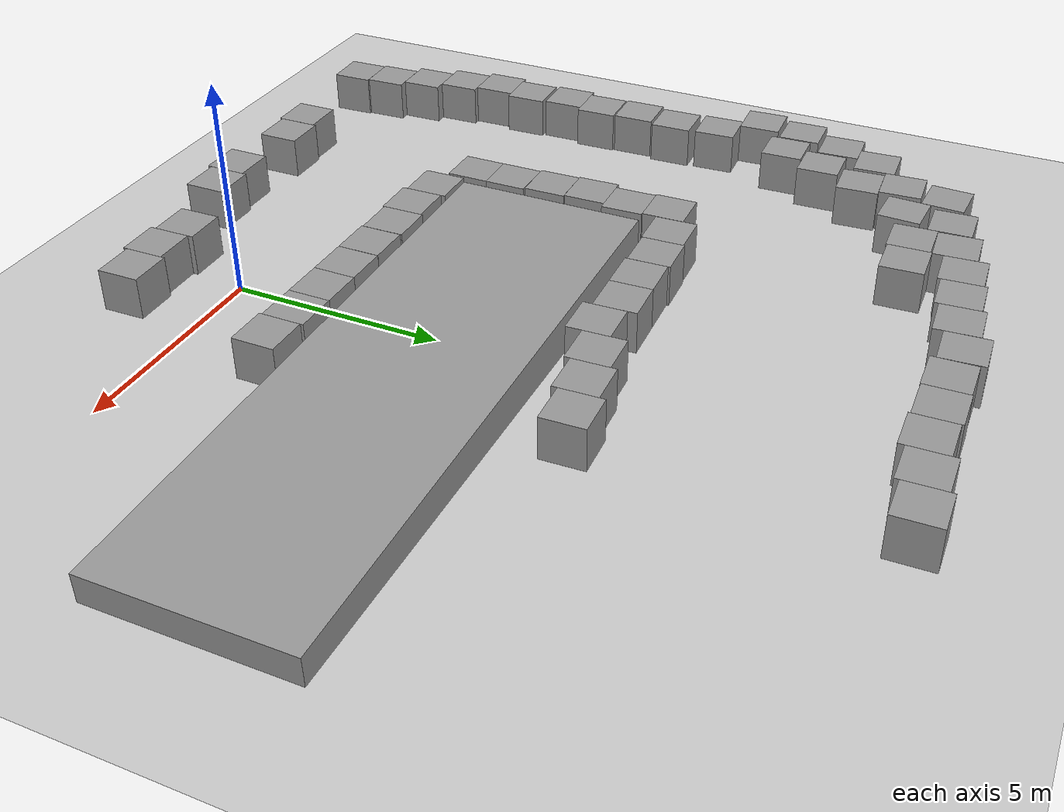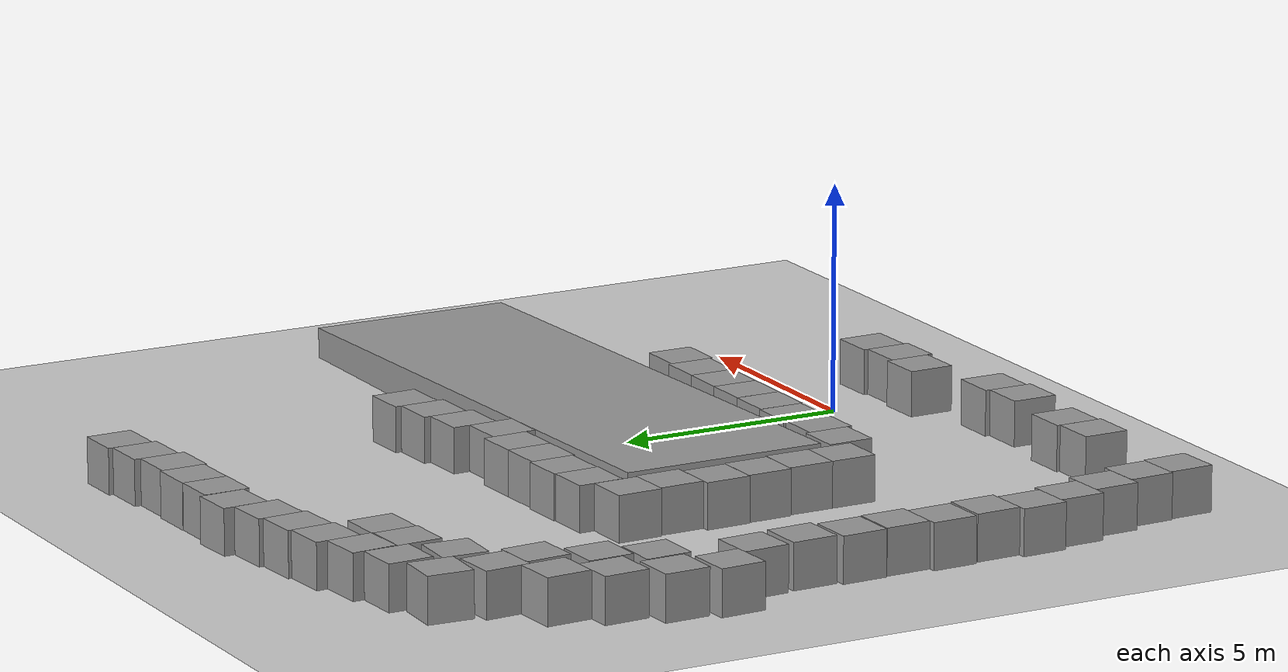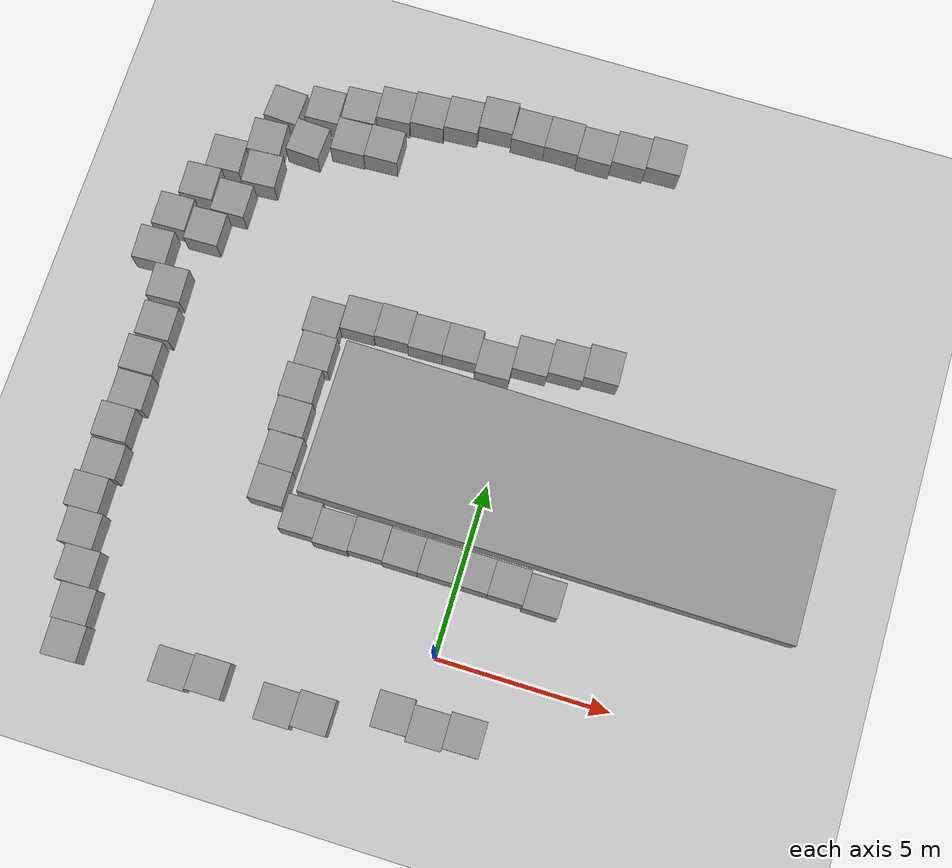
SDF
<sdf version="1.7">
 <world name="default">
  <model name="ground_plane">
   <static>1</static>
   <link name="link">
    <collision name="collision">
     <geometry><plane><normal>0 0 1</normal><size>100 100</size></plane></geometry>
     <surface>
      <contact><collide_bitmask>65535</collide_bitmask></contact>
      <friction><ode><mu>100</mu><mu2>50</mu2></ode></friction>
     </surface>
    </collision>
    <visual name="visual">
     <cast_shadows>0</cast_shadows>
     <geometry><plane><normal>0 0 1</normal><size>100 100</size></plane></geometry>
     <material>
      <script><uri>file://media/materials/scripts/gazebo.material</uri><name>Gazebo/Grey</name></script>
     </material>
    </visual>
   </link>
  </model>
  <model name="unit_box">
   <pose>-1.6306 2.48148 0.5 0 -0 0.003919</pose>
   <link name="link">
    <inertial>
     <mass>1</mass>
     <inertia>
      <ixx>0.166667</ixx>
      <ixy>0</ixy>
      <ixz>0</ixz>
      <iyy>0.166667</iyy>
      <iyz>0</iyz>
      <izz>0.166667</izz>
     </inertia>
    </inertial>
    <collision name="collision"><geometry><box><size>1 1 1</size></box></geometry></collision>
    <visual name="visual">
     <geometry><box><size>1 1 1</size></box></geometry>
     <material>
      <script><name>Gazebo/Grey</name><uri>file://media/materials/scripts/gazebo.material</uri></script>
     </material>
    </visual>
   </link>
  </model>
  <model name="unit_box_0">
   <pose>-0.627463 2.48304 0.5 0 0 -0.002213</pose>
   <link name="link">
    <inertial>
     <mass>1</mass>
     <inertia>
      <ixx>0.166667</ixx>
      <ixy>0</ixy>
      <ixz>0</ixz>
      <iyy>0.166667</iyy>
      <iyz>0</iyz>
      <izz>0.166667</izz>
     </inertia>
    </inertial>
    <collision name="collision"><geometry><box><size>1 1 1</size></box></geometry></collision>
    <visual name="visual">
     <geometry><box><size>1 1 1</size></box></geometry>
     <material>
      <script><name>Gazebo/Grey</name><uri>file://media/materials/scripts/gazebo.material</uri></script>
     </material>
    </visual>
   </link>
  </model>
  <model name="unit_box_1">
   <pose>0.372536 2.48136 0.5 0 0 -0.002213</pose>
   <link name="link">
    <inertial>
     <mass>1</mass>
     <inertia>
      <ixx>0.166667</ixx>
      <ixy>0</ixy>
      <ixz>0</ixz>
      <iyy>0.166667</iyy>
      <iyz>0</iyz>
      <izz>0.166667</izz>
     </inertia>
    </inertial>
    <collision name="collision"><geometry><box><size>1 1 1</size></box></geometry></collision>
    <visual name="visual">
     <geometry><box><size>1 1 1</size></box></geometry>
     <material>
      <script><name>Gazebo/Grey</name><uri>file://media/materials/scripts/gazebo.material</uri></script>
     </material>
    </visual>
   </link>
  </model>
  <model name="unit_box_2">
   <pose>1.37261 2.47906 0.5 0 0 -0.002082</pose>
   <link name="link">
    <inertial>
     <mass>1</mass>
     <inertia>
      <ixx>0.166667</ixx>
      <ixy>0</ixy>
      <ixz>0</ixz>
      <iyy>0.166667</iyy>
      <iyz>0</iyz>
      <izz>0.166667</izz>
     </inertia>
    </inertial>
    <collision name="collision"><geometry><box><size>1 1 1</size></box></geometry></collision>
    <visual name="visual">
     <geometry><box><size>1 1 1</size></box></geometry>
     <material>
      <script><name>Gazebo/Grey</name><uri>file://media/materials/scripts/gazebo.material</uri></script>
     </material>
    </visual>
   </link>
  </model>
  <model name="unit_box_3">
   <pose>2.37253 2.41076 0.5 0 -0 -0.001967</pose>
   <link name="link">
    <inertial>
     <mass>1</mass>
     <inertia>
      <ixx>0.166667</ixx>
      <ixy>0</ixy>
      <ixz>0</ixz>
      <iyy>0.166667</iyy>
      <iyz>0</iyz>
      <izz>0.166667</izz>
     </inertia>
    </inertial>
    <collision name="collision"><geometry><box><size>1 1 1</size></box></geometry></collision>
    <visual name="visual">
     <geometry><box><size>1 1 1</size></box></geometry>
     <material>
      <script><name>Gazebo/Grey</name><uri>file://media/materials/scripts/gazebo.material</uri></script>
     </material>
    </visual>
   </link>
  </model>
  <model name="unit_box_6">
   <pose>-2.63556 2.50705 0.5 0 -0 0.012705</pose>
   <link name="link">
    <inertial>
     <mass>1</mass>
     <inertia>
      <ixx>0.166667</ixx>
      <ixy>0</ixy>
      <ixz>0</ixz>
      <iyy>0.166667</iyy>
      <iyz>0</iyz>
      <izz>0.166667</izz>
     </inertia>
    </inertial>
    <collision name="collision"><geometry><box><size>1 1 1</size></box></geometry></collision>
    <visual name="visual">
     <geometry><box><size>1 1 1</size></box></geometry>
     <material>
      <script><name>Gazebo/Grey</name><uri>file://media/materials/scripts/gazebo.material</uri></script>
     </material>
    </visual>
   </link>
  </model>
  <model name="unit_box_7">
   <pose>-3.63502 2.45258 0.5 0 -0 0.012608</pose>
   <link name="link">
    <inertial>
     <mass>1</mass>
     <inertia>
      <ixx>0.166667</ixx>
      <ixy>0</ixy>
      <ixz>0</ixz>
      <iyy>0.166667</iyy>
      <iyz>0</iyz>
      <izz>0.166667</izz>
     </inertia>
    </inertial>
    <collision name="collision"><geometry><box><size>1 1 1</size></box></geometry></collision>
    <visual name="visual">
     <geometry><box><size>1 1 1</size></box></geometry>
     <material>
      <script><name>Gazebo/Grey</name><uri>file://media/materials/scripts/gazebo.material</uri></script>
     </material>
    </visual>
   </link>
  </model>
  <model name="unit_box_8">
   <pose>-4.63656 2.54261 0.5 0 -0 0.011882</pose>
   <link name="link">
    <inertial>
     <mass>1</mass>
     <inertia>
      <ixx>0.166667</ixx>
      <ixy>0</ixy>
      <ixz>0</ixz>
      <iyy>0.166667</iyy>
      <iyz>0</iyz>
      <izz>0.166667</izz>
     </inertia>
    </inertial>
    <collision name="collision"><geometry><box><size>1 1 1</size></box></geometry></collision>
    <visual name="visual">
     <geometry><box><size>1 1 1</size></box></geometry>
     <material>
      <script><name>Gazebo/Grey</name><uri>file://media/materials/scripts/gazebo.material</uri></script>
     </material>
    </visual>
   </link>
  </model>
  <model name="unit_box_9">
   <pose>-2.63745 -2.38465 0.5 0 -0 0.002465</pose>
   <link name="link">
    <inertial>
     <mass>1</mass>
     <inertia>
      <ixx>0.166667</ixx>
      <ixy>0</ixy>
      <ixz>0</ixz>
      <iyy>0.166667</iyy>
      <iyz>0</iyz>
      <izz>0.166667</izz>
     </inertia>
    </inertial>
    <collision name="collision"><geometry><box><size>1 1 1</size></box></geometry></collision>
    <visual name="visual">
     <geometry><box><size>1 1 1</size></box></geometry>
     <material>
      <script><name>Gazebo/Grey</name><uri>file://media/materials/scripts/gazebo.material</uri></script>
     </material>
    </visual>
   </link>
  </model>
  <model name="unit_box_10">
   <pose>-3.63746 -2.49021 0.5 0 -0 0.003056</pose>
   <link name="link">
    <inertial>
     <mass>1</mass>
     <inertia>
      <ixx>0.166667</ixx>
      <ixy>0</ixy>
      <ixz>0</ixz>
      <iyy>0.166667</iyy>
      <iyz>0</iyz>
      <izz>0.166667</izz>
     </inertia>
    </inertial>
    <collision name="collision"><geometry><box><size>1 1 1</size></box></geometry></collision>
    <visual name="visual">
     <geometry><box><size>1 1 1</size></box></geometry>
     <material>
      <script><name>Gazebo/Grey</name><uri>file://media/materials/scripts/gazebo.material</uri></script>
     </material>
    </visual>
   </link>
  </model>
  <model name="unit_box_11">
   <pose>-0.613582 -1.75543 0.5 0 -0 0.017531</pose>
   <link name="link">
    <inertial>
     <mass>1</mass>
     <inertia>
      <ixx>0.166667</ixx>
      <ixy>0</ixy>
      <ixz>0</ixz>
      <iyy>0.166667</iyy>
      <iyz>0</iyz>
      <izz>0.166667</izz>
     </inertia>
    </inertial>
    <collision name="collision"><geometry><box><size>1 1 1</size></box></geometry></collision>
    <visual name="visual">
     <geometry><box><size>1 1 1</size></box></geometry>
     <material>
      <script><name>Gazebo/Grey</name><uri>file://media/materials/scripts/gazebo.material</uri></script>
     </material>
    </visual>
   </link>
  </model>
  <model name="unit_box_12">
   <pose>0.388434 -1.86074 0.499995 0 -1e-05 0.01748</pose>
   <link name="link">
    <inertial>
     <mass>1</mass>
     <inertia>
      <ixx>0.166667</ixx>
      <ixy>0</ixy>
      <ixz>0</ixz>
      <iyy>0.166667</iyy>
      <iyz>0</iyz>
      <izz>0.166667</izz>
     </inertia>
    </inertial>
    <collision name="collision"><geometry><box><size>1 1 1</size></box></geometry></collision>
    <visual name="visual">
     <geometry><box><size>1 1 1</size></box></geometry>
     <material>
      <script><name>Gazebo/Grey</name><uri>file://media/materials/scripts/gazebo.material</uri></script>
     </material>
    </visual>
   </link>
  </model>
  <model name="unit_box_13">
   <pose>1.3866 -1.74674 0.5 0 -0 0.017478</pose>
   <link name="link">
    <inertial>
     <mass>1</mass>
     <inertia>
      <ixx>0.166667</ixx>
      <ixy>0</ixy>
      <ixz>0</ixz>
      <iyy>0.166667</iyy>
      <iyz>0</iyz>
      <izz>0.166667</izz>
     </inertia>
    </inertial>
    <collision name="collision"><geometry><box><size>1 1 1</size></box></geometry></collision>
    <visual name="visual">
     <geometry><box><size>1 1 1</size></box></geometry>
     <material>
      <script><name>Gazebo/Grey</name><uri>file://media/materials/scripts/gazebo.material</uri></script>
     </material>
    </visual>
   </link>
  </model>
  <model name="unit_box_32_clone_33_clone_clone_8">
   <pose>2.18443 9.11433 0.5 0 -0 0.033156</pose>
   <link name="link">
    <inertial>
     <mass>1</mass>
     <inertia>
      <ixx>0.166667</ixx>
      <ixy>0</ixy>
      <ixz>0</ixz>
      <iyy>0.166667</iyy>
      <iyz>0</iyz>
      <izz>0.166667</izz>
     </inertia>
    </inertial>
    <collision name="collision"><geometry><box><size>1 1 1</size></box></geometry></collision>
    <visual name="visual">
     <geometry><box><size>1 1 1</size></box></geometry>
     <material>
      <script><name>Gazebo/Grey</name><uri>file://media/materials/scripts/gazebo.material</uri></script>
     </material>
    </visual>
   </link>
  </model>
  <model name="unit_box_32_clone_33_clone_clone_9">
   <pose>1.18953 8.94286 0.5 0 -0 0.03315</pose>
   <link name="link">
    <inertial>
     <mass>1</mass>
     <inertia>
      <ixx>0.166667</ixx>
      <ixy>0</ixy>
      <ixz>0</ixz>
      <iyy>0.166667</iyy>
      <iyz>0</iyz>
      <izz>0.166667</izz>
     </inertia>
    </inertial>
    <collision name="collision"><geometry><box><size>1 1 1</size></box></geometry></collision>
    <visual name="visual">
     <geometry><box><size>1 1 1</size></box></geometry>
     <material>
      <script><name>Gazebo/Grey</name><uri>file://media/materials/scripts/gazebo.material</uri></script>
     </material>
    </visual>
   </link>
  </model>
  <model name="unit_box_32_clone_33_clone_clone_10">
   <pose>0.194748 8.76683 0.5 0 -0 0.033042</pose>
   <link name="link">
    <inertial>
     <mass>1</mass>
     <inertia>
      <ixx>0.166667</ixx>
      <ixy>0</ixy>
      <ixz>0</ixz>
      <iyy>0.166667</iyy>
      <iyz>0</iyz>
      <izz>0.166667</izz>
     </inertia>
    </inertial>
    <collision name="collision"><geometry><box><size>1 1 1</size></box></geometry></collision>
    <visual name="visual">
     <geometry><box><size>1 1 1</size></box></geometry>
     <material>
      <script><name>Gazebo/Grey</name><uri>file://media/materials/scripts/gazebo.material</uri></script>
     </material>
    </visual>
   </link>
  </model>
  <model name="unit_box_32_clone_33_clone_clone_11">
   <pose>-0.792292 8.35812 0.5 0 -0 0.033042</pose>
   <link name="link">
    <inertial>
     <mass>1</mass>
     <inertia>
      <ixx>0.166667</ixx>
      <ixy>0</ixy>
      <ixz>0</ixz>
      <iyy>0.166667</iyy>
      <iyz>0</iyz>
      <izz>0.166667</izz>
     </inertia>
    </inertial>
    <collision name="collision"><geometry><box><size>1 1 1</size></box></geometry></collision>
    <visual name="visual">
     <geometry><box><size>1 1 1</size></box></geometry>
     <material>
      <script><name>Gazebo/Grey</name><uri>file://media/materials/scripts/gazebo.material</uri></script>
     </material>
    </visual>
   </link>
  </model>
  <model name="unit_box_32_clone_33_clone_clone_12">
   <pose>-1.79893 8.54188 0.5 0 -0 0.033039</pose>
   <link name="link">
    <inertial>
     <mass>1</mass>
     <inertia>
      <ixx>0.166667</ixx>
      <ixy>0</ixy>
      <ixz>0</ixz>
      <iyy>0.166667</iyy>
      <iyz>0</iyz>
      <izz>0.166667</izz>
     </inertia>
    </inertial>
    <collision name="collision"><geometry><box><size>1 1 1</size></box></geometry></collision>
    <visual name="visual">
     <geometry><box><size>1 1 1</size></box></geometry>
     <material>
      <script><name>Gazebo/Grey</name><uri>file://media/materials/scripts/gazebo.material</uri></script>
     </material>
    </visual>
   </link>
  </model>
  <model name="unit_box_32_clone_33_clone_clone_13">
   <pose>-2.79838 8.50866 0.499995 1e-05 -0 0.033039</pose>
   <link name="link">
    <inertial>
     <mass>1</mass>
     <inertia>
      <ixx>0.166667</ixx>
      <ixy>0</ixy>
      <ixz>0</ixz>
      <iyy>0.166667</iyy>
      <iyz>0</iyz>
      <izz>0.166667</izz>
     </inertia>
    </inertial>
    <collision name="collision"><geometry><box><size>1 1 1</size></box></geometry></collision>
    <visual name="visual">
     <geometry><box><size>1 1 1</size></box></geometry>
     <material>
      <script><name>Gazebo/Grey</name><uri>file://media/materials/scripts/gazebo.material</uri></script>
     </material>
    </visual>
   </link>
  </model>
  <model name="unit_box_32_clone_33_clone_clone_14">
   <pose>-3.79983 8.52595 0.5 0 -0 0.032308</pose>
   <link name="link">
    <inertial>
     <mass>1</mass>
     <inertia>
      <ixx>0.166667</ixx>
      <ixy>0</ixy>
      <ixz>0</ixz>
      <iyy>0.166667</iyy>
      <iyz>0</iyz>
      <izz>0.166667</izz>
     </inertia>
    </inertial>
    <collision name="collision"><geometry><box><size>1 1 1</size></box></geometry></collision>
    <visual name="visual">
     <geometry><box><size>1 1 1</size></box></geometry>
     <material>
      <script><name>Gazebo/Grey</name><uri>file://media/materials/scripts/gazebo.material</uri></script>
     </material>
    </visual>
   </link>
  </model>
  <model name="unit_box_32_clone_33_clone_clone_15">
   <pose>-4.79857 8.47024 0.5 0 -0 0.03229</pose>
   <link name="link">
    <inertial>
     <mass>1</mass>
     <inertia>
      <ixx>0.166667</ixx>
      <ixy>0</ixy>
      <ixz>0</ixz>
      <iyy>0.166667</iyy>
      <iyz>0</iyz>
      <izz>0.166667</izz>
     </inertia>
    </inertial>
    <collision name="collision"><geometry><box><size>1 1 1</size></box></geometry></collision>
    <visual name="visual">
     <geometry><box><size>1 1 1</size></box></geometry>
     <material>
      <script><name>Gazebo/Grey</name><uri>file://media/materials/scripts/gazebo.material</uri></script>
     </material>
    </visual>
   </link>
  </model>
  <model name="unit_box_32_clone_33_clone_clone_16">
   <pose>-5.79529 8.10614 0.499995 1e-05 -0 0.022258</pose>
   <link name="link">
    <inertial>
     <mass>1</mass>
     <inertia>
      <ixx>0.166667</ixx>
      <ixy>0</ixy>
      <ixz>0</ixz>
      <iyy>0.166667</iyy>
      <iyz>0</iyz>
      <izz>0.166667</izz>
     </inertia>
    </inertial>
    <collision name="collision"><geometry><box><size>1 1 1</size></box></geometry></collision>
    <visual name="visual">
     <geometry><box><size>1 1 1</size></box></geometry>
     <material>
      <script><name>Gazebo/Grey</name><uri>file://media/materials/scripts/gazebo.material</uri></script>
     </material>
    </visual>
   </link>
  </model>
  <model name="unit_box_32_clone_33_clone_clone_17">
   <pose>-5.72149 7.1075 0.5 0 -0 0.022182</pose>
   <link name="link">
    <inertial>
     <mass>1</mass>
     <inertia>
      <ixx>0.166667</ixx>
      <ixy>0</ixy>
      <ixz>0</ixz>
      <iyy>0.166667</iyy>
      <iyz>0</iyz>
      <izz>0.166667</izz>
     </inertia>
    </inertial>
    <collision name="collision"><geometry><box><size>1 1 1</size></box></geometry></collision>
    <visual name="visual">
     <geometry><box><size>1 1 1</size></box></geometry>
     <material>
      <script><name>Gazebo/Grey</name><uri>file://media/materials/scripts/gazebo.material</uri></script>
     </material>
    </visual>
   </link>
  </model>
  <model name="unit_box_32_clone_33_clone_clone_18">
   <pose>-5.84898 6.10409 0.5 0 -0 0.021277</pose>
   <link name="link">
    <inertial>
     <mass>1</mass>
     <inertia>
      <ixx>0.166667</ixx>
      <ixy>0</ixy>
      <ixz>0</ixz>
      <iyy>0.166667</iyy>
      <iyz>0</iyz>
      <izz>0.166667</izz>
     </inertia>
    </inertial>
    <collision name="collision"><geometry><box><size>1 1 1</size></box></geometry></collision>
    <visual name="visual">
     <geometry><box><size>1 1 1</size></box></geometry>
     <material>
      <script><name>Gazebo/Grey</name><uri>file://media/materials/scripts/gazebo.material</uri></script>
     </material>
    </visual>
   </link>
  </model>
  <model name="unit_box_32_clone_33_clone_clone_19">
   <pose>-5.79002 5.10233 0.5 0 -0 0.015791</pose>
   <link name="link">
    <inertial>
     <mass>1</mass>
     <inertia>
      <ixx>0.166667</ixx>
      <ixy>0</ixy>
      <ixz>0</ixz>
      <iyy>0.166667</iyy>
      <iyz>0</iyz>
      <izz>0.166667</izz>
     </inertia>
    </inertial>
    <collision name="collision"><geometry><box><size>1 1 1</size></box></geometry></collision>
    <visual name="visual">
     <geometry><box><size>1 1 1</size></box></geometry>
     <material>
      <script><name>Gazebo/Grey</name><uri>file://media/materials/scripts/gazebo.material</uri></script>
     </material>
    </visual>
   </link>
  </model>
  <model name="unit_box_32_clone_33_clone_clone_20">
   <pose>-5.72105 4.09691 0.5 0 -0 0.002954</pose>
   <link name="link">
    <inertial>
     <mass>1</mass>
     <inertia>
      <ixx>0.166667</ixx>
      <ixy>0</ixy>
      <ixz>0</ixz>
      <iyy>0.166667</iyy>
      <iyz>0</iyz>
      <izz>0.166667</izz>
     </inertia>
    </inertial>
    <collision name="collision"><geometry><box><size>1 1 1</size></box></geometry></collision>
    <visual name="visual">
     <geometry><box><size>1 1 1</size></box></geometry>
     <material>
      <script><name>Gazebo/Grey</name><uri>file://media/materials/scripts/gazebo.material</uri></script>
     </material>
    </visual>
   </link>
  </model>
  <model name="unit_box_32_clone_33_clone_clone_20_clone">
   <pose>-5.7151 3.09672 0.5 0 -0 0.002614</pose>
   <link name="link">
    <inertial>
     <mass>1</mass>
     <inertia>
      <ixx>0.166667</ixx>
      <ixy>0</ixy>
      <ixz>0</ixz>
      <iyy>0.166667</iyy>
      <iyz>0</iyz>
      <izz>0.166667</izz>
     </inertia>
    </inertial>
    <collision name="collision"><geometry><box><size>1 1 1</size></box></geometry></collision>
    <visual name="visual">
     <geometry><box><size>1 1 1</size></box></geometry>
     <material>
      <script><name>Gazebo/Grey</name><uri>file://media/materials/scripts/gazebo.material</uri></script>
     </material>
    </visual>
   </link>
  </model>
  <model name="unit_box_32_clone_33_clone_clone_20_clone_4">
   <pose>2.19747 15.6838 0.5 0 -0 0.02256</pose>
   <link name="link">
    <inertial>
     <mass>1</mass>
     <inertia>
      <ixx>0.166667</ixx>
      <ixy>0</ixy>
      <ixz>0</ixz>
      <iyy>0.166667</iyy>
      <iyz>0</iyz>
      <izz>0.166667</izz>
     </inertia>
    </inertial>
    <collision name="collision"><geometry><box><size>1 1 1</size></box></geometry></collision>
    <visual name="visual">
     <geometry><box><size>1 1 1</size></box></geometry>
     <material>
      <script><name>Gazebo/Grey</name><uri>file://media/materials/scripts/gazebo.material</uri></script>
     </material>
    </visual>
   </link>
  </model>
  <model name="unit_box_32_clone_33_clone_clone_20_clone_5">
   <pose>1.19999 15.5603 0.5 0 -0 0.022563</pose>
   <link name="link">
    <inertial>
     <mass>1</mass>
     <inertia>
      <ixx>0.166667</ixx>
      <ixy>0</ixy>
      <ixz>0</ixz>
      <iyy>0.166667</iyy>
      <iyz>0</iyz>
      <izz>0.166667</izz>
     </inertia>
    </inertial>
    <collision name="collision"><geometry><box><size>1 1 1</size></box></geometry></collision>
    <visual name="visual">
     <geometry><box><size>1 1 1</size></box></geometry>
     <material>
      <script><name>Gazebo/Grey</name><uri>file://media/materials/scripts/gazebo.material</uri></script>
     </material>
    </visual>
   </link>
  </model>
  <model name="unit_box_32_clone_33_clone_clone_20_clone_6">
   <pose>0.203308 15.3978 0.5 0 -0 0.022832</pose>
   <link name="link">
    <inertial>
     <mass>1</mass>
     <inertia>
      <ixx>0.166667</ixx>
      <ixy>0</ixy>
      <ixz>0</ixz>
      <iyy>0.166667</iyy>
      <iyz>0</iyz>
      <izz>0.166667</izz>
     </inertia>
    </inertial>
    <collision name="collision"><geometry><box><size>1 1 1</size></box></geometry></collision>
    <visual name="visual">
     <geometry><box><size>1 1 1</size></box></geometry>
     <material>
      <script><name>Gazebo/Grey</name><uri>file://media/materials/scripts/gazebo.material</uri></script>
     </material>
    </visual>
   </link>
  </model>
  <model name="unit_box_32_clone_33_clone_clone_20_clone_7">
   <pose>-0.797533 15.4217 0.5 0 -0 0.022901</pose>
   <link name="link">
    <inertial>
     <mass>1</mass>
     <inertia>
      <ixx>0.166667</ixx>
      <ixy>0</ixy>
      <ixz>0</ixz>
      <iyy>0.166667</iyy>
      <iyz>0</iyz>
      <izz>0.166667</izz>
     </inertia>
    </inertial>
    <collision name="collision"><geometry><box><size>1 1 1</size></box></geometry></collision>
    <visual name="visual">
     <geometry><box><size>1 1 1</size></box></geometry>
     <material>
      <script><name>Gazebo/Grey</name><uri>file://media/materials/scripts/gazebo.material</uri></script>
     </material>
    </visual>
   </link>
  </model>
  <model name="unit_box_32_clone_33_clone_clone_20_clone_8">
   <pose>-1.79715 15.386 0.49999 0 -0 0.023258</pose>
   <link name="link">
    <inertial>
     <mass>1</mass>
     <inertia>
      <ixx>0.166667</ixx>
      <ixy>0</ixy>
      <ixz>0</ixz>
      <iyy>0.166667</iyy>
      <iyz>0</iyz>
      <izz>0.166667</izz>
     </inertia>
    </inertial>
    <collision name="collision"><geometry><box><size>1 1 1</size></box></geometry></collision>
    <visual name="visual">
     <geometry><box><size>1 1 1</size></box></geometry>
     <material>
      <script><name>Gazebo/Grey</name><uri>file://media/materials/scripts/gazebo.material</uri></script>
     </material>
    </visual>
   </link>
  </model>
  <model name="unit_box_32_clone_33_clone_clone_20_clone_9">
   <pose>-2.81476 15.4781 0.49999 0 -0 0.054129</pose>
   <link name="link">
    <inertial>
     <mass>1</mass>
     <inertia>
      <ixx>0.166667</ixx>
      <ixy>0</ixy>
      <ixz>0</ixz>
      <iyy>0.166667</iyy>
      <iyz>0</iyz>
      <izz>0.166667</izz>
     </inertia>
    </inertial>
    <collision name="collision"><geometry><box><size>1 1 1</size></box></geometry></collision>
    <visual name="visual">
     <geometry><box><size>1 1 1</size></box></geometry>
     <material>
      <script><name>Gazebo/Grey</name><uri>file://media/materials/scripts/gazebo.material</uri></script>
     </material>
    </visual>
   </link>
  </model>
  <model name="unit_box_32_clone_33_clone_clone_20_clone_10">
   <pose>-3.80295 15.1867 0.5 0 -0 0.063612</pose>
   <link name="link">
    <inertial>
     <mass>1</mass>
     <inertia>
      <ixx>0.166667</ixx>
      <ixy>0</ixy>
      <ixz>0</ixz>
      <iyy>0.166667</iyy>
      <iyz>0</iyz>
      <izz>0.166667</izz>
     </inertia>
    </inertial>
    <collision name="collision"><geometry><box><size>1 1 1</size></box></geometry></collision>
    <visual name="visual">
     <geometry><box><size>1 1 1</size></box></geometry>
     <material>
      <script><name>Gazebo/Grey</name><uri>file://media/materials/scripts/gazebo.material</uri></script>
     </material>
    </visual>
   </link>
  </model>
  <model name="unit_box_32_clone_33_clone_clone_20_clone_11">
   <pose>-4.7948 15.0263 0.49999 0 -0 0.063689</pose>
   <link name="link">
    <inertial>
     <mass>1</mass>
     <inertia>
      <ixx>0.166667</ixx>
      <ixy>0</ixy>
      <ixz>0</ixz>
      <iyy>0.166667</iyy>
      <iyz>0</iyz>
      <izz>0.166667</izz>
     </inertia>
    </inertial>
    <collision name="collision"><geometry><box><size>1 1 1</size></box></geometry></collision>
    <visual name="visual">
     <geometry><box><size>1 1 1</size></box></geometry>
     <material>
      <script><name>Gazebo/Grey</name><uri>file://media/materials/scripts/gazebo.material</uri></script>
     </material>
    </visual>
   </link>
  </model>
  <model name="unit_box_32_clone_33_clone_clone_20_clone_12">
   <pose>-5.78829 14.8918 0.499995 1e-05 -0 0.063763</pose>
   <link name="link">
    <inertial>
     <mass>1</mass>
     <inertia>
      <ixx>0.166667</ixx>
      <ixy>0</ixy>
      <ixz>0</ixz>
      <iyy>0.166667</iyy>
      <iyz>0</iyz>
      <izz>0.166667</izz>
     </inertia>
    </inertial>
    <collision name="collision"><geometry><box><size>1 1 1</size></box></geometry></collision>
    <visual name="visual">
     <geometry><box><size>1 1 1</size></box></geometry>
     <material>
      <script><name>Gazebo/Grey</name><uri>file://media/materials/scripts/gazebo.material</uri></script>
     </material>
    </visual>
   </link>
  </model>
  <model name="unit_box_32_clone_33_clone_clone_20_clone_13">
   <pose>-6.77101 14.5813 0.5 0 -0 0.06574</pose>
   <link name="link">
    <inertial>
     <mass>1</mass>
     <inertia>
      <ixx>0.166667</ixx>
      <ixy>0</ixy>
      <ixz>0</ixz>
      <iyy>0.166667</iyy>
      <iyz>0</iyz>
      <izz>0.166667</izz>
     </inertia>
    </inertial>
    <collision name="collision"><geometry><box><size>1 1 1</size></box></geometry></collision>
    <visual name="visual">
     <geometry><box><size>1 1 1</size></box></geometry>
     <material>
      <script><name>Gazebo/Grey</name><uri>file://media/materials/scripts/gazebo.material</uri></script>
     </material>
    </visual>
   </link>
  </model>
  <model name="unit_box_32_clone_33_clone_clone_20_clone_14">
   <pose>-7.7836 14.2835 0.5 0 -0 0.039313</pose>
   <link name="link">
    <inertial>
     <mass>1</mass>
     <inertia>
      <ixx>0.166667</ixx>
      <ixy>0</ixy>
      <ixz>0</ixz>
      <iyy>0.166667</iyy>
      <iyz>0</iyz>
      <izz>0.166667</izz>
     </inertia>
    </inertial>
    <collision name="collision"><geometry><box><size>1 1 1</size></box></geometry></collision>
    <visual name="visual">
     <geometry><box><size>1 1 1</size></box></geometry>
     <material>
      <script><name>Gazebo/Grey</name><uri>file://media/materials/scripts/gazebo.material</uri></script>
     </material>
    </visual>
   </link>
  </model>
  <model name="unit_box_32_clone_33_clone_clone_20_clone_15">
   <pose>-8.9044 13.942 0.5 0 -0 -0.053112</pose>
   <link name="link">
    <inertial>
     <mass>1</mass>
     <inertia>
      <ixx>0.166667</ixx>
      <ixy>0</ixy>
      <ixz>0</ixz>
      <iyy>0.166667</iyy>
      <iyz>0</iyz>
      <izz>0.166667</izz>
     </inertia>
    </inertial>
    <collision name="collision"><geometry><box><size>1 1 1</size></box></geometry></collision>
    <visual name="visual">
     <geometry><box><size>1 1 1</size></box></geometry>
     <material>
      <script><name>Gazebo/Grey</name><uri>file://media/materials/scripts/gazebo.material</uri></script>
     </material>
    </visual>
   </link>
  </model>
  <model name="unit_box_32_clone_33_clone_clone_20_clone_16">
   <pose>-6.75502 13.5641 0.5 0 -0 0.037414</pose>
   <link name="link">
    <inertial>
     <mass>1</mass>
     <inertia>
      <ixx>0.166667</ixx>
      <ixy>0</ixy>
      <ixz>0</ixz>
      <iyy>0.166667</iyy>
      <iyz>0</iyz>
      <izz>0.166667</izz>
     </inertia>
    </inertial>
    <collision name="collision"><geometry><box><size>1 1 1</size></box></geometry></collision>
    <visual name="visual">
     <geometry><box><size>1 1 1</size></box></geometry>
     <material>
      <script><name>Gazebo/Grey</name><uri>file://media/materials/scripts/gazebo.material</uri></script>
     </material>
    </visual>
   </link>
  </model>
  <model name="unit_box_32_clone_33_clone_clone_20_clone_17">
   <pose>-5.75683 13.6319 0.5 0 -0 0.037428</pose>
   <link name="link">
    <inertial>
     <mass>1</mass>
     <inertia>
      <ixx>0.166667</ixx>
      <ixy>0</ixy>
      <ixz>0</ixz>
      <iyy>0.166667</iyy>
      <iyz>0</iyz>
      <izz>0.166667</izz>
     </inertia>
    </inertial>
    <collision name="collision"><geometry><box><size>1 1 1</size></box></geometry></collision>
    <visual name="visual">
     <geometry><box><size>1 1 1</size></box></geometry>
     <material>
      <script><name>Gazebo/Grey</name><uri>file://media/materials/scripts/gazebo.material</uri></script>
     </material>
    </visual>
   </link>
  </model>
  <model name="unit_box_32_clone_33_clone_clone_20_clone_18">
   <pose>-7.94466 13.1211 0.5 0 0 -0.053105</pose>
   <link name="link">
    <inertial>
     <mass>1</mass>
     <inertia>
      <ixx>0.166667</ixx>
      <ixy>0</ixy>
      <ixz>0</ixz>
      <iyy>0.166667</iyy>
      <iyz>0</iyz>
      <izz>0.166667</izz>
     </inertia>
    </inertial>
    <collision name="collision"><geometry><box><size>1 1 1</size></box></geometry></collision>
    <visual name="visual">
     <geometry><box><size>1 1 1</size></box></geometry>
     <material>
      <script><name>Gazebo/Grey</name><uri>file://media/materials/scripts/gazebo.material</uri></script>
     </material>
    </visual>
   </link>
  </model>
  <model name="unit_box_32_clone_33_clone_clone_20_clone_19">
   <pose>-9.10059 12.84 0.5 0 -0 0.061255</pose>
   <link name="link">
    <inertial>
     <mass>1</mass>
     <inertia>
      <ixx>0.166667</ixx>
      <ixy>0</ixy>
      <ixz>0</ixz>
      <iyy>0.166667</iyy>
      <iyz>0</iyz>
      <izz>0.166667</izz>
     </inertia>
    </inertial>
    <collision name="collision"><geometry><box><size>1 1 1</size></box></geometry></collision>
    <visual name="visual">
     <geometry><box><size>1 1 1</size></box></geometry>
     <material>
      <script><name>Gazebo/Grey</name><uri>file://media/materials/scripts/gazebo.material</uri></script>
     </material>
    </visual>
   </link>
  </model>
  <model name="unit_box_32_clone_33_clone_clone_20_clone_20">
   <pose>-10.0552 11.9966 0.5 0 -0 0.052315</pose>
   <link name="link">
    <inertial>
     <mass>1</mass>
     <inertia>
      <ixx>0.166667</ixx>
      <ixy>0</ixy>
      <ixz>0</ixz>
      <iyy>0.166667</iyy>
      <iyz>0</iyz>
      <izz>0.166667</izz>
     </inertia>
    </inertial>
    <collision name="collision"><geometry><box><size>1 1 1</size></box></geometry></collision>
    <visual name="visual">
     <geometry><box><size>1 1 1</size></box></geometry>
     <material>
      <script><name>Gazebo/Grey</name><uri>file://media/materials/scripts/gazebo.material</uri></script>
     </material>
    </visual>
   </link>
  </model>
  <model name="unit_box_32_clone_33_clone_clone_20_clone_21">
   <pose>-10.5225 10.9709 0.5 0 -0 0.045367</pose>
   <link name="link">
    <inertial>
     <mass>1</mass>
     <inertia>
      <ixx>0.166667</ixx>
      <ixy>0</ixy>
      <ixz>0</ixz>
      <iyy>0.166667</iyy>
      <iyz>0</iyz>
      <izz>0.166667</izz>
     </inertia>
    </inertial>
    <collision name="collision"><geometry><box><size>1 1 1</size></box></geometry></collision>
    <visual name="visual">
     <geometry><box><size>1 1 1</size></box></geometry>
     <material>
      <script><name>Gazebo/Grey</name><uri>file://media/materials/scripts/gazebo.material</uri></script>
     </material>
    </visual>
   </link>
  </model>
  <model name="unit_box_32_clone_33_clone_clone_20_clone_22">
   <pose>-10.9582 9.85781 0.5 0 -0 0.027316</pose>
   <link name="link">
    <inertial>
     <mass>1</mass>
     <inertia>
      <ixx>0.166667</ixx>
      <ixy>0</ixy>
      <ixz>0</ixz>
      <iyy>0.166667</iyy>
      <iyz>0</iyz>
      <izz>0.166667</izz>
     </inertia>
    </inertial>
    <collision name="collision"><geometry><box><size>1 1 1</size></box></geometry></collision>
    <visual name="visual">
     <geometry><box><size>1 1 1</size></box></geometry>
     <material>
      <script><name>Gazebo/Grey</name><uri>file://media/materials/scripts/gazebo.material</uri></script>
     </material>
    </visual>
   </link>
  </model>
  <model name="unit_box_32_clone_33_clone_clone_20_clone_23">
   <pose>-11.1589 8.74007 0.5 0 -0 0.048849</pose>
   <link name="link">
    <inertial>
     <mass>1</mass>
     <inertia>
      <ixx>0.166667</ixx>
      <ixy>0</ixy>
      <ixz>0</ixz>
      <iyy>0.166667</iyy>
      <iyz>0</iyz>
      <izz>0.166667</izz>
     </inertia>
    </inertial>
    <collision name="collision"><geometry><box><size>1 1 1</size></box></geometry></collision>
    <visual name="visual">
     <geometry><box><size>1 1 1</size></box></geometry>
     <material>
      <script><name>Gazebo/Grey</name><uri>file://media/materials/scripts/gazebo.material</uri></script>
     </material>
    </visual>
   </link>
  </model>
  <model name="unit_box_32_clone_33_clone_clone_20_clone_24">
   <pose>-8.92076 11.8464 0.499995 0 1e-05 0.059481</pose>
   <link name="link">
    <inertial>
     <mass>1</mass>
     <inertia>
      <ixx>0.166667</ixx>
      <ixy>0</ixy>
      <ixz>0</ixz>
      <iyy>0.166667</iyy>
      <iyz>0</iyz>
      <izz>0.166667</izz>
     </inertia>
    </inertial>
    <collision name="collision"><geometry><box><size>1 1 1</size></box></geometry></collision>
    <visual name="visual">
     <geometry><box><size>1 1 1</size></box></geometry>
     <material>
      <script><name>Gazebo/Grey</name><uri>file://media/materials/scripts/gazebo.material</uri></script>
     </material>
    </visual>
   </link>
  </model>
  <model name="unit_box_32_clone_33_clone_clone_20_clone_25">
   <pose>-9.46967 10.7446 0.5 0 -0 0.027317</pose>
   <link name="link">
    <inertial>
     <mass>1</mass>
     <inertia>
      <ixx>0.166667</ixx>
      <ixy>0</ixy>
      <ixz>0</ixz>
      <iyy>0.166667</iyy>
      <iyz>0</iyz>
      <izz>0.166667</izz>
     </inertia>
    </inertial>
    <collision name="collision"><geometry><box><size>1 1 1</size></box></geometry></collision>
    <visual name="visual">
     <geometry><box><size>1 1 1</size></box></geometry>
     <material>
      <script><name>Gazebo/Grey</name><uri>file://media/materials/scripts/gazebo.material</uri></script>
     </material>
    </visual>
   </link>
  </model>
  <model name="unit_box_32_clone_33_clone_clone_20_clone_26">
   <pose>-9.91304 9.69943 0.5 0 -0 0.027318</pose>
   <link name="link">
    <inertial>
     <mass>1</mass>
     <inertia>
      <ixx>0.166667</ixx>
      <ixy>0</ixy>
      <ixz>0</ixz>
      <iyy>0.166667</iyy>
      <iyz>0</iyz>
      <izz>0.166667</izz>
     </inertia>
    </inertial>
    <collision name="collision"><geometry><box><size>1 1 1</size></box></geometry></collision>
    <visual name="visual">
     <geometry><box><size>1 1 1</size></box></geometry>
     <material>
      <script><name>Gazebo/Grey</name><uri>file://media/materials/scripts/gazebo.material</uri></script>
     </material>
    </visual>
   </link>
  </model>
  <model name="unit_box_32_clone_33_clone_clone_20_clone_27">
   <pose>-10.3774 7.77687 0.5 0 -0 0.048852</pose>
   <link name="link">
    <inertial>
     <mass>1</mass>
     <inertia>
      <ixx>0.166667</ixx>
      <ixy>0</ixy>
      <ixz>0</ixz>
      <iyy>0.166667</iyy>
      <iyz>0</iyz>
      <izz>0.166667</izz>
     </inertia>
    </inertial>
    <collision name="collision"><geometry><box><size>1 1 1</size></box></geometry></collision>
    <visual name="visual">
     <geometry><box><size>1 1 1</size></box></geometry>
     <material>
      <script><name>Gazebo/Grey</name><uri>file://media/materials/scripts/gazebo.material</uri></script>
     </material>
    </visual>
   </link>
  </model>
  <model name="unit_box_32_clone_33_clone_clone_20_clone_28">
   <pose>-10.2931 6.6275 0.5 0 -0 0.027319</pose>
   <link name="link">
    <inertial>
     <mass>1</mass>
     <inertia>
      <ixx>0.166667</ixx>
      <ixy>0</ixy>
      <ixz>0</ixz>
      <iyy>0.166667</iyy>
      <iyz>0</iyz>
      <izz>0.166667</izz>
     </inertia>
    </inertial>
    <collision name="collision"><geometry><box><size>1 1 1</size></box></geometry></collision>
    <visual name="visual">
     <geometry><box><size>1 1 1</size></box></geometry>
     <material>
      <script><name>Gazebo/Grey</name><uri>file://media/materials/scripts/gazebo.material</uri></script>
     </material>
    </visual>
   </link>
  </model>
  <model name="unit_box_32_clone_33_clone_clone_20_clone_29">
   <pose>-10.3881 5.5507 0.5 0 -0 0.027319</pose>
   <link name="link">
    <inertial>
     <mass>1</mass>
     <inertia>
      <ixx>0.166667</ixx>
      <ixy>0</ixy>
      <ixz>0</ixz>
      <iyy>0.166667</iyy>
      <iyz>0</iyz>
      <izz>0.166667</izz>
     </inertia>
    </inertial>
    <collision name="collision"><geometry><box><size>1 1 1</size></box></geometry></collision>
    <visual name="visual">
     <geometry><box><size>1 1 1</size></box></geometry>
     <material>
      <script><name>Gazebo/Grey</name><uri>file://media/materials/scripts/gazebo.material</uri></script>
     </material>
    </visual>
   </link>
  </model>
  <model name="unit_box_32_clone_33_clone_clone_20_clone_30">
   <pose>-10.324 4.51644 0.5 0 -0 0.025238</pose>
   <link name="link">
    <inertial>
     <mass>1</mass>
     <inertia>
      <ixx>0.166667</ixx>
      <ixy>0</ixy>
      <ixz>0</ixz>
      <iyy>0.166667</iyy>
      <iyz>0</iyz>
      <izz>0.166667</izz>
     </inertia>
    </inertial>
    <collision name="collision"><geometry><box><size>1 1 1</size></box></geometry></collision>
    <visual name="visual">
     <geometry><box><size>1 1 1</size></box></geometry>
     <material>
      <script><name>Gazebo/Grey</name><uri>file://media/materials/scripts/gazebo.material</uri></script>
     </material>
    </visual>
   </link>
  </model>
  <model name="unit_box_32_clone_33_clone_clone_20_clone_31">
   <pose>-10.4521 3.51288 0.5 0 -0 0.025233</pose>
   <link name="link">
    <inertial>
     <mass>1</mass>
     <inertia>
      <ixx>0.166667</ixx>
      <ixy>0</ixy>
      <ixz>0</ixz>
      <iyy>0.166667</iyy>
      <iyz>0</iyz>
      <izz>0.166667</izz>
     </inertia>
    </inertial>
    <collision name="collision"><geometry><box><size>1 1 1</size></box></geometry></collision>
    <visual name="visual">
     <geometry><box><size>1 1 1</size></box></geometry>
     <material>
      <script><name>Gazebo/Grey</name><uri>file://media/materials/scripts/gazebo.material</uri></script>
     </material>
    </visual>
   </link>
  </model>
  <model name="unit_box_32_clone_33_clone_clone_20_clone_32">
   <pose>-10.3554 2.44974 0.5 0 -0 0.026888</pose>
   <link name="link">
    <inertial>
     <mass>1</mass>
     <inertia>
      <ixx>0.166667</ixx>
      <ixy>0</ixy>
      <ixz>0</ixz>
      <iyy>0.166667</iyy>
      <iyz>0</iyz>
      <izz>0.166667</izz>
     </inertia>
    </inertial>
    <collision name="collision"><geometry><box><size>1 1 1</size></box></geometry></collision>
    <visual name="visual">
     <geometry><box><size>1 1 1</size></box></geometry>
     <material>
      <script><name>Gazebo/Grey</name><uri>file://media/materials/scripts/gazebo.material</uri></script>
     </material>
    </visual>
   </link>
  </model>
  <model name="unit_box_32_clone_33_clone_clone_20_clone_33">
   <pose>-10.4838 1.44592 0.5 0 -0 0.026889</pose>
   <link name="link">
    <inertial>
     <mass>1</mass>
     <inertia>
      <ixx>0.166667</ixx>
      <ixy>0</ixy>
      <ixz>0</ixz>
      <iyy>0.166667</iyy>
      <iyz>0</iyz>
      <izz>0.166667</izz>
     </inertia>
    </inertial>
    <collision name="collision"><geometry><box><size>1 1 1</size></box></geometry></collision>
    <visual name="visual">
     <geometry><box><size>1 1 1</size></box></geometry>
     <material>
      <script><name>Gazebo/Grey</name><uri>file://media/materials/scripts/gazebo.material</uri></script>
     </material>
    </visual>
   </link>
  </model>
  <model name="unit_box_32_clone_33_clone_clone_20_clone_34">
   <pose>-10.2929 0.450667 0.5 0 -0 0.02695</pose>
   <link name="link">
    <inertial>
     <mass>1</mass>
     <inertia>
      <ixx>0.166667</ixx>
      <ixy>0</ixy>
      <ixz>0</ixz>
      <iyy>0.166667</iyy>
      <iyz>0</iyz>
      <izz>0.166667</izz>
     </inertia>
    </inertial>
    <collision name="collision"><geometry><box><size>1 1 1</size></box></geometry></collision>
    <visual name="visual">
     <geometry><box><size>1 1 1</size></box></geometry>
     <material>
      <script><name>Gazebo/Grey</name><uri>file://media/materials/scripts/gazebo.material</uri></script>
     </material>
    </visual>
   </link>
  </model>
  <model name="unit_box_32_clone_33_clone_clone_20_clone_35">
   <pose>-9.99792 -0.541778 0.5 0 -0 0.027088</pose>
   <link name="link">
    <inertial>
     <mass>1</mass>
     <inertia>
      <ixx>0.166667</ixx>
      <ixy>0</ixy>
      <ixz>0</ixz>
      <iyy>0.166667</iyy>
      <iyz>0</iyz>
      <izz>0.166667</izz>
     </inertia>
    </inertial>
    <collision name="collision"><geometry><box><size>1 1 1</size></box></geometry></collision>
    <visual name="visual">
     <geometry><box><size>1 1 1</size></box></geometry>
     <material>
      <script><name>Gazebo/Grey</name><uri>file://media/materials/scripts/gazebo.material</uri></script>
     </material>
    </visual>
   </link>
  </model>
  <model name="unit_box_32_clone_33_clone_clone_20_clone_36">
   <pose>-9.7369 -1.53861 0.5 0 -0 0.035601</pose>
   <link name="link">
    <inertial>
     <mass>1</mass>
     <inertia>
      <ixx>0.166667</ixx>
      <ixy>0</ixy>
      <ixz>0</ixz>
      <iyy>0.166667</iyy>
      <iyz>0</iyz>
      <izz>0.166667</izz>
     </inertia>
    </inertial>
    <collision name="collision"><geometry><box><size>1 1 1</size></box></geometry></collision>
    <visual name="visual">
     <geometry><box><size>1 1 1</size></box></geometry>
     <material>
      <script><name>Gazebo/Grey</name><uri>file://media/materials/scripts/gazebo.material</uri></script>
     </material>
    </visual>
   </link>
  </model>
  <model name="unit_box_32_clone_33_clone_clone_20_clone_37">
   <pose>-9.64898 -2.53761 0.5 0 -0 0.032634</pose>
   <link name="link">
    <inertial>
     <mass>1</mass>
     <inertia>
      <ixx>0.166667</ixx>
      <ixy>0</ixy>
      <ixz>0</ixz>
      <iyy>0.166667</iyy>
      <iyz>0</iyz>
      <izz>0.166667</izz>
     </inertia>
    </inertial>
    <collision name="collision"><geometry><box><size>1 1 1</size></box></geometry></collision>
    <visual name="visual">
     <geometry><box><size>1 1 1</size></box></geometry>
     <material>
      <script><name>Gazebo/Grey</name><uri>file://media/materials/scripts/gazebo.material</uri></script>
     </material>
    </visual>
   </link>
  </model>
  <model name="unit_box_32_clone_33_clone_clone_20_clone_40">
   <pose>-6.64039 -2.38388 0.5 0 -0 0.00851</pose>
   <link name="link">
    <inertial>
     <mass>1</mass>
     <inertia>
      <ixx>0.166667</ixx>
      <ixy>0</ixy>
      <ixz>0</ixz>
      <iyy>0.166667</iyy>
      <iyz>0</iyz>
      <izz>0.166667</izz>
     </inertia>
    </inertial>
    <collision name="collision"><geometry><box><size>1 1 1</size></box></geometry></collision>
    <visual name="visual">
     <geometry><box><size>1 1 1</size></box></geometry>
     <material>
      <script><name>Gazebo/Grey</name><uri>file://media/materials/scripts/gazebo.material</uri></script>
     </material>
    </visual>
   </link>
  </model>
  <model name="unit_box_32_clone_33_clone_clone_20_clone_41">
   <pose>-5.63949 -2.30451 0.5 0 -0 0.00545</pose>
   <link name="link">
    <inertial>
     <mass>1</mass>
     <inertia>
      <ixx>0.166667</ixx>
      <ixy>0</ixy>
      <ixz>0</ixz>
      <iyy>0.166667</iyy>
      <iyz>0</iyz>
      <izz>0.166667</izz>
     </inertia>
    </inertial>
    <collision name="collision"><geometry><box><size>1 1 1</size></box></geometry></collision>
    <visual name="visual">
     <geometry><box><size>1 1 1</size></box></geometry>
     <material>
      <script><name>Gazebo/Grey</name><uri>file://media/materials/scripts/gazebo.material</uri></script>
     </material>
    </visual>
   </link>
  </model>
  <model name="unit_box_34">
   <pose>2.14334 5.40625 0.31764 0 0.025698 0</pose>
   <link name="link">
    <inertial>
     <mass>1</mass>
     <inertia>
      <ixx>0.166667</ixx>
      <ixy>0</ixy>
      <ixz>0</ixz>
      <iyy>0.166667</iyy>
      <iyz>0</iyz>
      <izz>0.166667</izz>
     </inertia>
    </inertial>
    <collision name="collision"><geometry><box><size>14.2326 4.50498 1</size></box></geometry></collision>
    <visual name="visual">
     <geometry><box><size>14.2326 4.50498 1</size></box></geometry>
     <material>
      <script><name>Gazebo/Grey</name><uri>file://media/materials/scripts/gazebo.material</uri></script>
     </material>
    </visual>
   </link>
  </model>
 </world>
</sdf>
